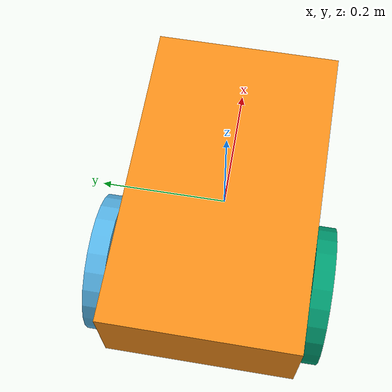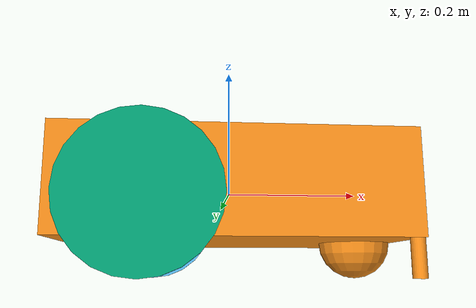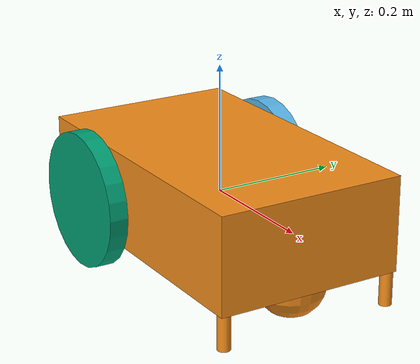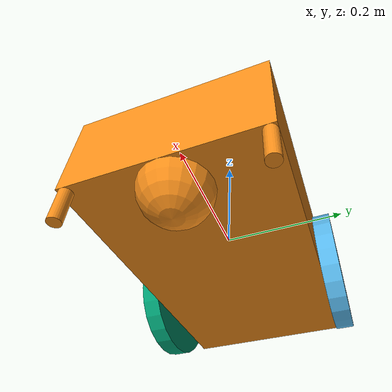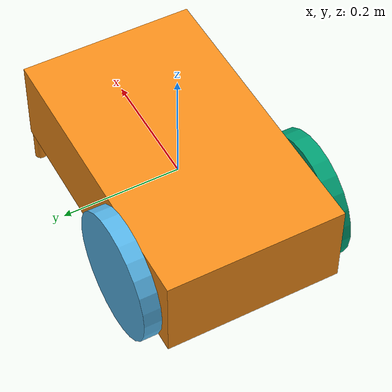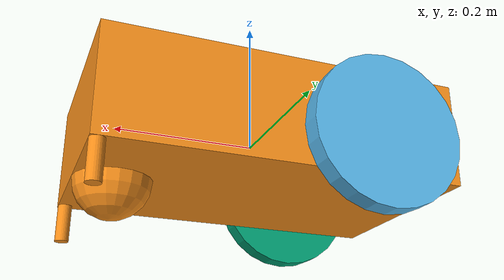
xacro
<?xml version='1.0'?>

<!-- Name the robot -->
<robot name="lawn_mower" xmlns:xacro="http://www.ros.org/wiki/xacro">

  <xacro:include filename="$(find simulation_environment)/models/lawn_mower.gazebo" />
  <xacro:include filename="$(find simulation_environment)/models/materials.xacro" />
  <xacro:include filename="$(find simulation_environment)/models/macros.xacro" />
  <xacro:include filename="$(find simulation_environment)/models/parameter.xacro" />

  <!-- Define the chassis -->
  <link name='chassis'>
    <pose>0 0 0 0 0 0</pose>
    <!-- Define inertial system for the chassis -->
    <inertial>
      <!-- mass [kg], origin [m], inertia [kg m*m] -->
      <mass value="${m_chassis}"/>
      <xacro:box_inertia m="${m_chassis}" x="${x_chassis}" y="${y_chassis}" z="${z_chassis}"/>
    </inertial>
    <!-- Define collision sorrounding box -->
    <collision name='collision'>
      <origin xyz="0 0 0" rpy=" 0 0 0"/>
      <geometry>
        <box size="${x_chassis} ${y_chassis} ${z_chassis}"/>
      </geometry>
    </collision>
    <!-- Define visualization structure -->
    <visual name='chassis_visual'>
	  <origin xyz="0 0 0" rpy=" 0 0 0"/>
      <geometry>
        <box size="${x_chassis} ${y_chassis} ${z_chassis}"/>
      </geometry>
    </visual>

    <!-- Add the caster wheel! Here we simply assume complete slippage, thus we do not require that it rotates! -->
    <collision name='caster_collision'>
      <origin xyz="${-(r_wheel/2)+x_chassis/2} 0 ${-z_chassis/2}" rpy=" 0 0 0"/>
      <geometry>
        <sphere radius="${r_wheel/2}"/>
      </geometry>
      <surface>
        <friction>
          <ode>
            <mu>0</mu>
            <mu2>0</mu2>
            <slip1>1.0</slip1>
            <slip2>1.0</slip2>
          </ode>
        </friction>
      </surface>
    </collision>
    <visual name='caster_visual'>
      <origin xyz="${-(r_wheel/2)+x_chassis/2} 0 ${-z_chassis/2}" rpy=" 0 0 0"/>
      <geometry>
        <sphere radius="${r_wheel/2}"/>
      </geometry>
    </visual>

    <!-- Add visual for the chlorophyll sensors. TODO: Change color, make transparent and make a cone -->
    <visual name='sensor_visual'>
      <origin xyz="${x_sensor} ${y_sensor} ${-(r_wheel/2+z_chassis/2)/2}" rpy=" 0 0 0"/>
      <geometry>
        <cylinder radius="${r_sensor}" length="${r_wheel/2+z_chassis/2}"/>
      </geometry>
    </visual>
    <visual name='sensor_visual'>
      <origin xyz="${x_sensor} ${-y_sensor} ${-(r_wheel/2+z_chassis/2)/2}" rpy=" 0 0 0"/>
      <geometry>
        <cylinder radius="${r_sensor}" length="${r_wheel/2+z_chassis/2}"/>
      </geometry>
    </visual>
  </link>

  <!-- Add the wheels for the robot -->
  <link name="left_wheel">
    <collision name="collision">
      <origin xyz="0 0 0" rpy="0 1.5707 1.5707"/>
      <geometry>
        <cylinder radius="${r_wheel}" length="${h_wheel}"/>
      </geometry>
      <surface>
        <friction>
          <ode>
            <mu>0</mu>
            <mu2>0</mu2>
            <slip1>1.0</slip1>
            <slip2>1.0</slip2>
          </ode>
        </friction>
      </surface>
    </collision>
    <visual name="left_wheel_visual">
      <origin xyz="0 0 0" rpy="0 1.5707 1.5707"/>
      <geometry>
        <cylinder radius="${r_wheel}" length="${h_wheel}"/>
      </geometry>
    </visual>
    <inertial>
      <origin xyz="0 0 0" rpy="0 1.5707 1.5707"/>
      <mass value="${m_wheel}"/>
      <cylinder_inertia m="${m_wheel}" r="${r_wheel}" h="${h_wheel}"/>
      <xacro:cylinder_inertia m="${m_wheel}" r="${r_wheel}" h="${h_wheel}"/>
    </inertial>
  </link>

  <link name="right_wheel">
    <collision name="collision">
      <origin xyz="0 0 0" rpy="0 1.5707 1.5707"/>
      <geometry>
        <cylinder radius="${r_wheel}" length="${h_wheel}"/>
      </geometry>
      <surface>
        <friction>
          <ode>
            <mu>0</mu>
            <mu2>0</mu2>
            <slip1>1.0</slip1>
            <slip2>1.0</slip2>
          </ode>
        </friction>
      </surface>
    </collision>
    <visual name="right_wheel_visual">
      <origin xyz="0 0 0" rpy="0 1.5707 1.5707"/>
      <geometry>
        <cylinder radius="${r_wheel}" length="${h_wheel}"/>
      </geometry>
    </visual>
    <inertial>
      <origin xyz="0 0 0" rpy="0 1.5707 1.5707"/>
      <mass value="${m_wheel}"/>
      <cylinder_inertia m="${m_wheel}" r="${r_wheel}" h="${h_wheel}"/>
      <xacro:cylinder_inertia m="${m_wheel}" r="${r_wheel}" h="${h_wheel}"/>
    </inertial>
  </link>

  <!-- Set joints -->
  <joint type="continuous" name="left_wheel_hinge">
    <origin xyz="${-x_chassis/4} ${y_chassis/2+h_wheel/2} ${r_wheel/2-z_chassis/2}" rpy="0 0 0"/>
    <child link="left_wheel"/>
    <parent link="chassis"/>
    <axis xyz="0 1 0" rpy="0 0 0"/>
    <limit effort="100" velocity="100"/>
    <joint_properties damping="0.0" friction="0.0"/>
  </joint>

  <joint type="continuous" name="right_wheel_hinge">
    <origin xyz="${-x_chassis/4} ${-y_chassis/2-h_wheel/2} ${r_wheel/2-z_chassis/2}" rpy="0 0 0"/>
    <child link="right_wheel"/>
    <parent link="chassis"/>
    <axis xyz="0 1 0" rpy="0 0 0"/>
    <limit effort="100" velocity="100"/>
    <joint_properties damping="0.0" friction="0.0"/>
  </joint>

 </robot>

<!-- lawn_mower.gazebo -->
<robot xmlns:xacro="http://www.ros.org/wiki/xacro">

  <xacro:include filename="$(find simulation_environment)/models/parameter.xacro" />

  <!-- Odometry plugin to get messages from ROS and publish messages and control the motors of the wheels -->
  <gazebo>
	  <plugin name="odometry_plugin" filename="libodometry_plugin.so">
		<leftJoint>left_wheel_hinge</leftJoint>
		<rightJoint>right_wheel_hinge</rightJoint>
		<torque>${torque_wheel}</torque>
		<diameter>${r_wheel*2}</diameter>
		<axisDistance>${L_wheel}</axisDistance>
	  </plugin>
  </gazebo>

  <gazebo>
	  <plugin name="chlorophyllSensor_plugin" filename="libchlorophyllSensor_plugin.so">
		<x_pos>${x_sensor}</x_pos>
		<y_pos>${y_sensor}</y_pos>
	  </plugin>
  </gazebo>

  <gazebo reference="chassis">
      <material>Gazebo/Orange</material>
  </gazebo>
</robot>

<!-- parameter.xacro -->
<robot xmlns:xacro="http://www.ros.org/wiki/xacro">

 <!-- Define parameter -->
  <!-- Parameter for the chassis -->
  <xacro:property name="x_chassis" value="0.5" />
  <xacro:property name="y_chassis" value="0.3" />
  <xacro:property name="z_chassis" value="0.15" />
  <xacro:property name="m_chassis" value="5.0" />

  <!-- Parameter for the wheels -->
  <xacro:property name="r_wheel" value="0.1075" />
  <xacro:property name="h_wheel" value="0.03" />
  <!-- TODO: To stable the simulation we had to take a much higher mass value as would be realistic -->
  <xacro:property name="m_wheel" value="5" />
  <xacro:property name="torque_wheel" value="100" />
  <xacro:property name="L_wheel" value="0.1788" />

  <!-- Parameter for the chlorophyll sensors -->
  <xacro:property name="r_sensor" value="0.01" />
  <xacro:property name="x_sensor" value="${x_chassis/2 - r_sensor}" />
  <xacro:property name="y_sensor" value="${y_chassis/2 - r_sensor}" />

</robot>

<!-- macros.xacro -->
<robot xmlns:xacro="http://www.ros.org/wiki/xacro">

  <xacro:macro name="box_inertia" params="m x y z">
      <inertia
        ixx="${m*(y*y+z*z)/12}" ixy = "0" ixz = "0"
        iyy="${m*(x*x+z*z)/12}" iyz = "0"
        izz="${m*(x*x+z*z)/12}"
      />
  </xacro:macro>

  <xacro:macro name="cylinder_inertia" params="m r h">
    <inertia
      ixx="${m*(3*r*r+h*h)/12}" ixy = "0" ixz = "0"
      iyy="${m*(3*r*r+h*h)/12}" iyz = "0"
      izz="${m*r*r/2}"
    />
  </xacro:macro>

</robot>
